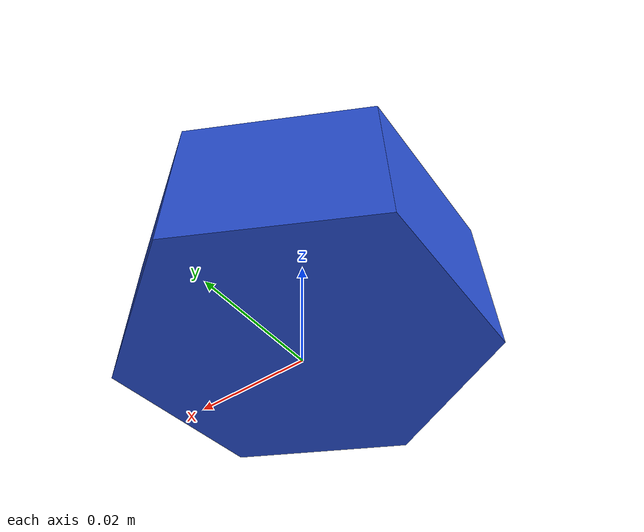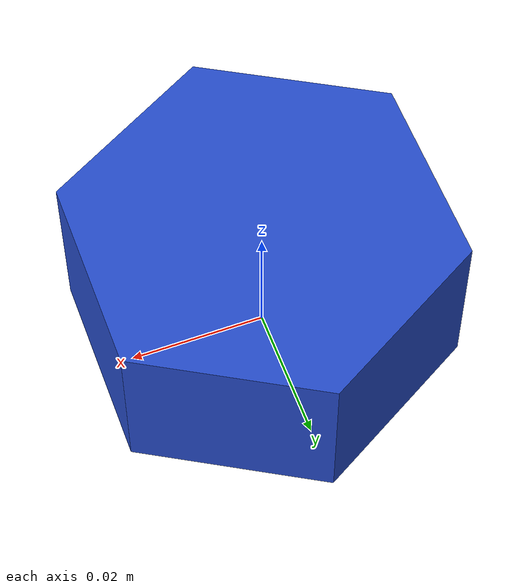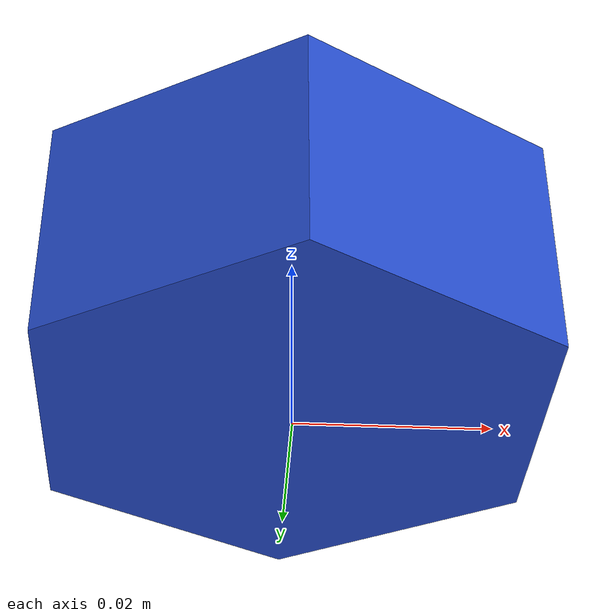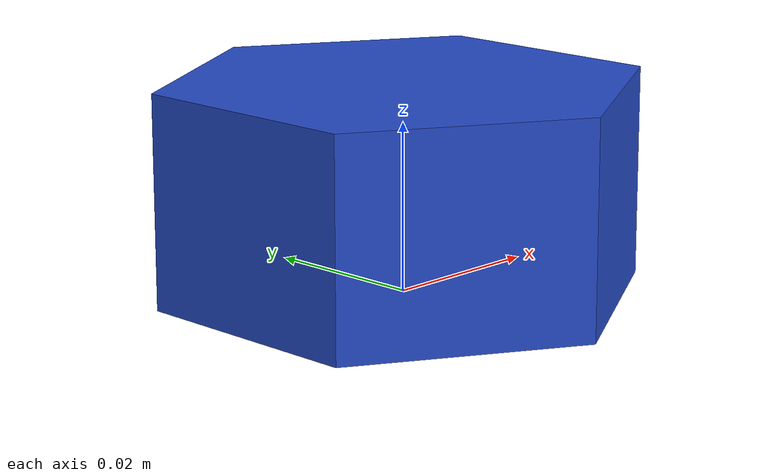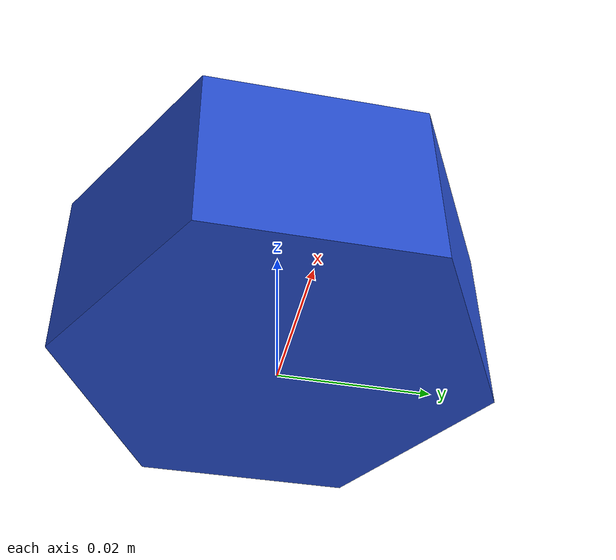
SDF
<sdf version='1.6'>
  <model name='hexagon'>
    <link name='hexagon_link'>
      <pose frame=''>0 0 0 0 -0 0</pose>
      <inertial>
        <pose frame=''>-0 0 0.025 0 -0 0</pose>
        <mass>0.432347</mass>
        <inertia>
          <ixx>0.000389851</ixx>
          <ixy>-7.61006e-20</ixy>
          <ixz>1.22872e-19</ixz>
          <iyy>0.000389851</iyy>
          <iyz>-1.82259e-20</iyz>
          <izz>0.000599557</izz>
        </inertia>
      </inertial>
      <collision name='hexagon_link_collision'>
        <pose frame=''>0 0 0 0 -0 0</pose>
        <geometry>
          <mesh>
            <scale>0.5 0.5 0.5</scale>
            <uri>model://hexagon/meshes/hexagon_link.STL</uri>
          </mesh>
        </geometry>
      </collision>
      <visual name='hexagon_link_visual'>
        <pose frame=''>0 0 0 0 -0 0</pose>
        <geometry>
          <mesh>
            <scale>0.5 0.5 0.5</scale>
            <uri>model://hexagon/meshes/hexagon_link.STL</uri>
          </mesh>
        </geometry>
        <material>
          <script>
            <name>Gazebo/Blue</name>
            <uri>file://media/materials/scripts/gazebo.material</uri>
          </script>
        </material>
      </visual>
    </link>
  </model>
</sdf>
